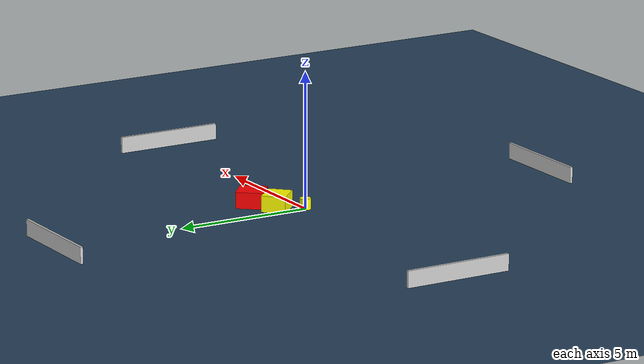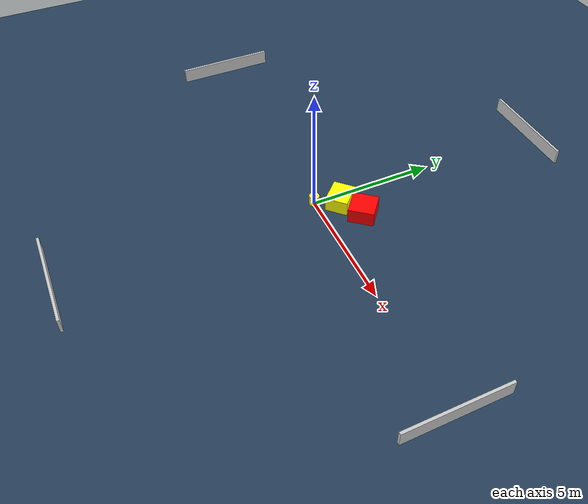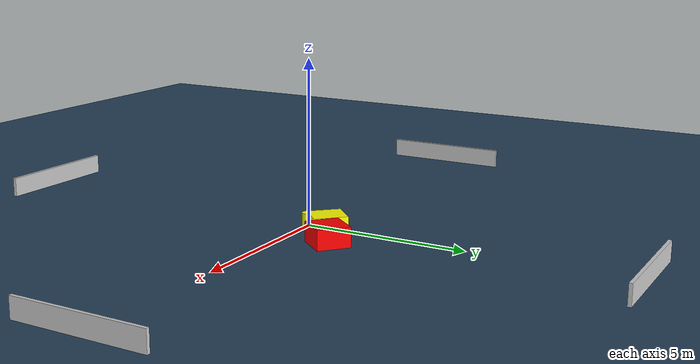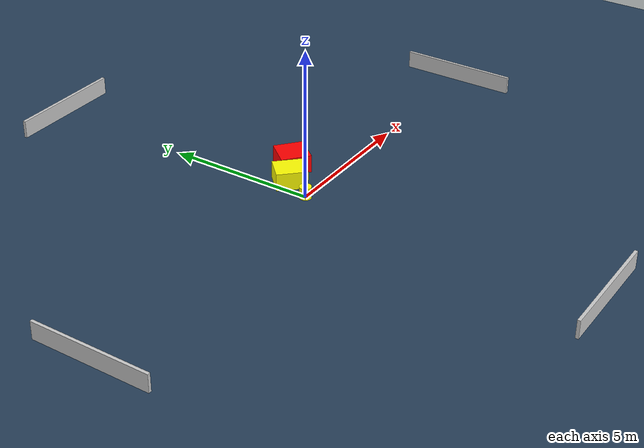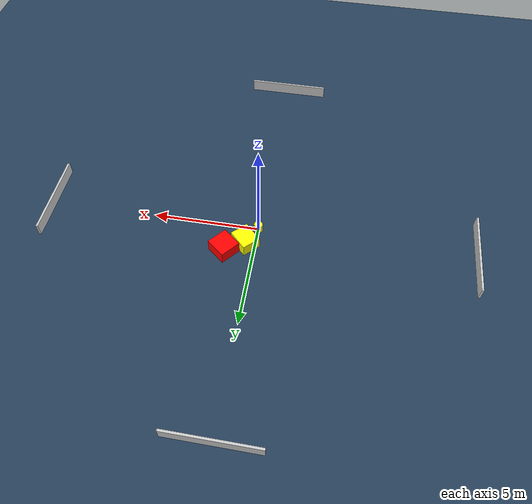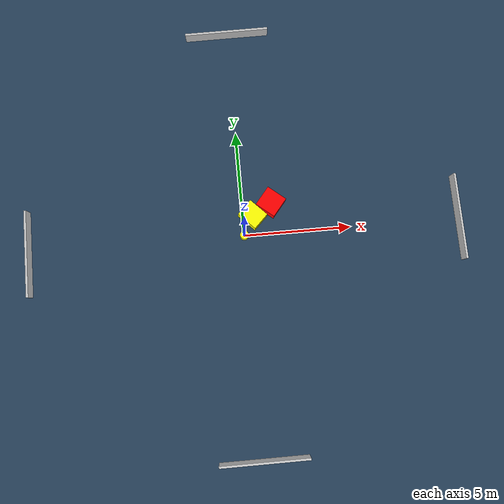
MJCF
<?xml version="1.0" ?>
<mujoco model="generated_environment">
  <option timestep="0.01" integrator="RK4" cone="elliptic"/>
  <default>
    <geom density="1"/>
  </default>
  <asset>
    <texture builtin="gradient" height="3072" name="skybox" rgb1="0.3 0.5 0.7" rgb2="0 0 0" type="skybox" width="512"/>
    <texture builtin="checker" height="300" name="groundplane" rgb1="0.2 0.3 0.4" rgb2="0.1 0.2 0.3" type="2d" width="300"/>
    <material name="groundplane" reflectance="0.2" texrepeat="5 5" texture="groundplane"/>
  </asset>
  <worldbody>
    <light dir="0 0 -1" directional="true" pos="0 0 1.5"/>
    <geom condim="3" friction="0.5 0.005 0.001" material="groundplane" name="floor" pos="0 0 0" size="0 0 0.05" type="plane"/>
    <body name="walls">
      <geom name="wall_1" condim="4" pos="-10.0 0.0 0.3" rgba="0.800000011920929 0.800000011920929 0.800000011920929 1.0" size="0.05 2.0 0.3" type="box"/>
      <geom name="wall_2" condim="4" pos="10.0 0.0 0.3" rgba="0.800000011920929 0.800000011920929 0.800000011920929 1.0" size="0.05 2.0 0.3" type="box"/>
      <geom name="wall_3" condim="4" pos="0.0 -10.0 0.3" rgba="0.800000011920929 0.800000011920929 0.800000011920929 1.0" size="2.0 0.05 0.3" type="box"/>
      <geom name="wall_4" condim="4" pos="0.0 10.0 0.3" rgba="0.800000011920929 0.800000011920929 0.800000011920929 1.0" size="2.0 0.05 0.3" type="box"/>
    </body>
    <body name="robot">
      <joint name="joint_x" type="slide" pos="0 0 0" axis="1 0 0"/>
      <joint name="joint_y" type="slide" pos="0 0 0" axis="0 1 0"/>
      <geom name="robot" type="cylinder" pos="0.0 0.0 0.2" size="0.2 0.2 0.0" mass="5.0" friction="1.0 0.005 0.0001" condim="4" rgba="1.0 1.0 0.0 1.0"/>
    </body>
    <body name="obstacle_1_movable">
      <geom name="obstacle_1_movable" condim="4" pos="0.4599339958236198 0.8950410742843757 0.3" euler="0 0 314.50436249703" friction="0.0 0.005 0.001" rgba="1.0 1.0 0.0 1.0" size="0.511095233457808 0.4355126232784079 0.3" type="box" mass="0.1"/>
      <joint type="free"/>
    </body>
    <body name="obstacle_2_static">
      <geom name="obstacle_2_static" condim="4" pos="1.3524934259670172 1.4174906665904665 0.3" euler="0 0 140.45217449524864" friction="0.0 0.005 0.001" rgba="1.0 0.0 0.0 1.0" size="0.5034085708989622 0.49788184808822206 0.3" type="box"/>
    </body>
  </worldbody>
  <actuator>
    <motor name="actuator_x" joint="joint_x" gear="1" ctrlrange="-1 1"/>
    <motor name="actuator_y" joint="joint_y" gear="1" ctrlrange="-1 1"/>
  </actuator>
</mujoco>
